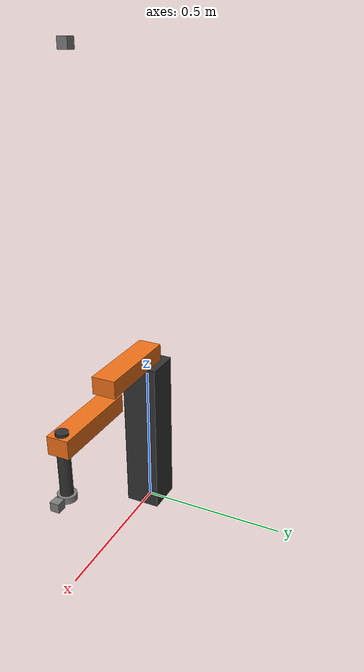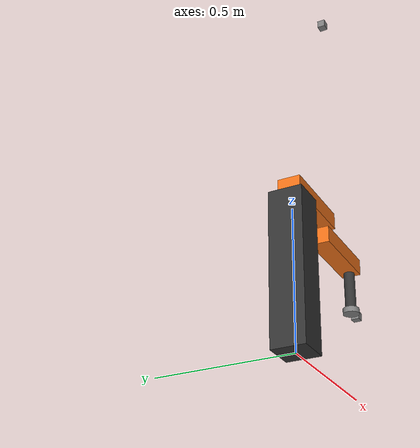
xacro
<?xml version="1.0"?>
<robot xmlns:xacro="http://www.ros.org/wiki/xacro" name="scara">

  <material name="igus_orange"><color rgba="0.95 0.45 0.1 1"/></material>
  <material name="dark"><color rgba="0.2 0.2 0.2 1"/></material>
  <material name="gray"><color rgba="0.5 0.5 0.5 1"/></material>

  <xacro:macro name="default_inertial" params="mass">
    <inertial>
      <mass value="${mass}"/>
      <inertia ixx="0.01" ixy="0" ixz="0" iyy="0.01" iyz="0" izz="0.01"/>
    </inertial>
  </xacro:macro>

  <link name="world"/>

  <joint name="world_joint" type="fixed">
    <parent link="world"/>
    <child link="base_link"/>
    <origin xyz="0 0 0" rpy="0 0 0"/>
  </joint>

  <!-- Pedestal column -->
  <link name="base_link">
    <visual>
      <origin xyz="0 0 0.275"/>
      <geometry><box size="0.12 0.12 0.55"/></geometry>
      <material name="dark"/>
    </visual>
    <collision>
      <origin xyz="0 0 0.275"/>
      <geometry><box size="0.12 0.12 0.55"/></geometry>
    </collision>
    <xacro:default_inertial mass="10.0"/>
  </link>

  <!-- J1 shoulder -->
  <joint name="joint1" type="revolute">
    <parent link="base_link"/>
    <child link="link1"/>
    <origin xyz="0 0 0.55" rpy="0 0 0"/>
    <axis xyz="0 0 1"/>
    <limit lower="-2.62" upper="2.62" effort="100" velocity="1.5"/>
    <dynamics damping="5.0"/>
  </joint>

  <link name="link1">
    <visual>
      <origin xyz="0.125 0 0.03"/>
      <geometry><box size="0.30 0.08 0.06"/></geometry>
      <material name="igus_orange"/>
    </visual>
    <collision>
      <origin xyz="0.125 0 0.03"/>
      <geometry><box size="0.30 0.08 0.06"/></geometry>
    </collision>
    <xacro:default_inertial mass="2.0"/>
  </link>

  <!-- J2 elbow (second arm hangs below the first) -->
  <joint name="joint2" type="revolute">
    <parent link="link1"/>
    <child link="link2"/>
    <origin xyz="0.25 0 -0.07" rpy="0 0 0"/>
    <axis xyz="0 0 1"/>
    <limit lower="-2.62" upper="2.62" effort="100" velocity="1.5"/>
    <dynamics damping="5.0"/>
  </joint>

  <link name="link2">
    <visual>
      <origin xyz="0.125 0 0.03"/>
      <geometry><box size="0.30 0.07 0.06"/></geometry>
      <material name="igus_orange"/>
    </visual>
    <collision>
      <origin xyz="0.125 0 0.03"/>
      <geometry><box size="0.30 0.07 0.06"/></geometry>
    </collision>
    <xacro:default_inertial mass="1.5"/>
  </link>

  <!-- J3 vertical quill, slides down (negative z) -->
  <joint name="joint3" type="prismatic">
    <parent link="link2"/>
    <child link="link3"/>
    <origin xyz="0.25 0 0" rpy="0 0 0"/>
    <axis xyz="0 0 1"/>
    <limit lower="-0.12" upper="0.0" effort="100" velocity="0.5"/>
    <dynamics damping="20.0"/>
  </joint>

  <link name="link3">
    <visual>
      <origin xyz="0 0 -0.04"/>
      <geometry><cylinder radius="0.02" length="0.22"/></geometry>
      <material name="dark"/>
    </visual>
    <collision>
      <origin xyz="0 0 -0.04"/>
      <geometry><cylinder radius="0.02" length="0.22"/></geometry>
    </collision>
    <xacro:default_inertial mass="0.8"/>
  </link>

  <!-- J4 wrist roll (tool flange) -->
  <joint name="joint4" type="revolute">
    <parent link="link3"/>
    <child link="link4"/>
    <origin xyz="0 0 -0.14" rpy="0 0 0"/>
    <axis xyz="0 0 1"/>
    <limit lower="-3.14" upper="3.14" effort="50" velocity="3.0"/>
    <dynamics damping="1.0"/>
  </joint>

  <link name="link4">
    <visual>
      <origin xyz="0 0 -0.01"/>
      <geometry><cylinder radius="0.03" length="0.02"/></geometry>
      <material name="gray"/>
    </visual>
    <collision>
      <origin xyz="0 0 -0.01"/>
      <geometry><cylinder radius="0.03" length="0.02"/></geometry>
    </collision>
    <xacro:default_inertial mass="0.3"/>
  </link>

  <joint name="ee_joint" type="fixed">
    <parent link="link4"/>
    <child link="link_ee"/>
    <origin xyz="0 0 -0.02" rpy="0 0 0"/>
  </joint>

  <link name="link_ee"/>

  <joint name="camera_joint" type="fixed">
    <parent link="link_ee"/>
    <child link="camera_link"/>
    <origin xyz="0.05 0 0.01" rpy="0 ${pi/2} 0"/>
  </joint>

  <link name="camera_link">
    <visual>
      <geometry><box size="0.03 0.03 0.03"/></geometry>
      <material name="gray"/>
    </visual>
    <xacro:default_inertial mass="0.05"/>
  </link>

  <joint name="camera_optical_joint" type="fixed">
    <origin xyz="0 0 0" rpy="${-pi/2} 0 ${-pi/2}"/>
    <parent link="camera_link"/>
    <child link="camera_link_optical"/>
  </joint>

  <link name="camera_link_optical"/>

  <gazebo reference="camera_link">
    <material>Gazebo/Gray</material>
    <sensor name="camera" type="camera">
      <pose>0 0 0 0 0 0</pose>
      <visualize>true</visualize>
      <update_rate>10</update_rate>
      <camera>
        <horizontal_fov>1.089</horizontal_fov>
        <image>
          <format>R8G8B8</format>
          <width>640</width>
          <height>480</height>
        </image>
        <clip>
          <near>0.05</near>
          <far>8.0</far>
        </clip>
        <lens>
          <intrinsics>
            <fx>500</fx>
            <fy>500</fy>
            <cx>320</cx>
            <cy>240</cy>
            <s>0</s>
          </intrinsics>
        </lens>
      </camera>
      <plugin name="camera_controller" filename="libgazebo_ros_camera.so">
        <frame_name>camera_link_optical</frame_name>
        <imageTopicName>camera/image_raw</imageTopicName>
        <cameraInfoTopicName>camera_info</cameraInfoTopicName>
        <Cx>320</Cx>
        <Cy>240</Cy>
        <focalLength>500</focalLength>
      </plugin>
    </sensor>
  </gazebo>

  <joint name="top_camera_joint" type="fixed">
    <parent link="world"/>
    <child link="top_camera_link"/>
    <origin xyz="0.35 0 1.55" rpy="0 ${pi/2} 0"/>
  </joint>

  <link name="top_camera_link">
    <visual>
      <geometry><box size="0.03 0.03 0.03"/></geometry>
      <material name="gray"/>
    </visual>
    <xacro:default_inertial mass="0.05"/>
  </link>

  <joint name="top_camera_optical_joint" type="fixed">
    <origin xyz="0 0 0" rpy="${-pi/2} 0 ${-pi/2}"/>
    <parent link="top_camera_link"/>
    <child link="top_camera_link_optical"/>
  </joint>

  <link name="top_camera_link_optical"/>

  <gazebo reference="top_camera_link">
    <material>Gazebo/Gray</material>
    <sensor name="top_camera" type="camera">
      <pose>0 0 0 0 0 0</pose>
      <visualize>true</visualize>
      <update_rate>10</update_rate>
      <camera>
        <horizontal_fov>1.089</horizontal_fov>
        <image>
          <format>R8G8B8</format>
          <width>640</width>
          <height>480</height>
        </image>
        <clip>
          <near>0.05</near>
          <far>8.0</far>
        </clip>
        <lens>
          <intrinsics>
            <fx>500</fx>
            <fy>500</fy>
            <cx>320</cx>
            <cy>240</cy>
            <s>0</s>
          </intrinsics>
        </lens>
      </camera>
      <plugin name="top_camera_controller" filename="libgazebo_ros_camera.so">
        <frame_name>top_camera_link_optical</frame_name>
        <imageTopicName>top_camera/image_raw</imageTopicName>
        <cameraInfoTopicName>top_camera/camera_info</cameraInfoTopicName>
        <Cx>320</Cx>
        <Cy>240</Cy>
        <focalLength>500</focalLength>
      </plugin>
    </sensor>
  </gazebo>

  <gazebo reference="base_link"><material>Gazebo/DarkGrey</material></gazebo>
  <gazebo reference="link1"><material>Gazebo/Orange</material></gazebo>
  <gazebo reference="link2"><material>Gazebo/Orange</material></gazebo>
  <gazebo reference="link3"><material>Gazebo/DarkGrey</material></gazebo>
  <gazebo reference="link4"><material>Gazebo/Grey</material></gazebo>

  <!-- ros2_control -->
  <ros2_control name="GazeboSystem" type="system">
    <hardware>
      <plugin>gazebo_ros2_control/GazeboSystem</plugin>
    </hardware>
    <joint name="joint1">
      <command_interface name="position"/>
      <state_interface name="position"/>
      <state_interface name="velocity"/>
    </joint>
    <joint name="joint2">
      <command_interface name="position"/>
      <state_interface name="position"/>
      <state_interface name="velocity"/>
    </joint>
    <joint name="joint3">
      <command_interface name="position"/>
      <state_interface name="position"/>
      <state_interface name="velocity"/>
    </joint>
    <joint name="joint4">
      <command_interface name="position"/>
      <state_interface name="position"/>
      <state_interface name="velocity"/>
    </joint>
  </ros2_control>

  <gazebo>
    <plugin filename="libgazebo_ros2_control.so" name="gazebo_ros2_control">
      <parameters>$(find scara_sim)/config/scara_controllers.yaml</parameters>
    </plugin>
  </gazebo>

</robot>
